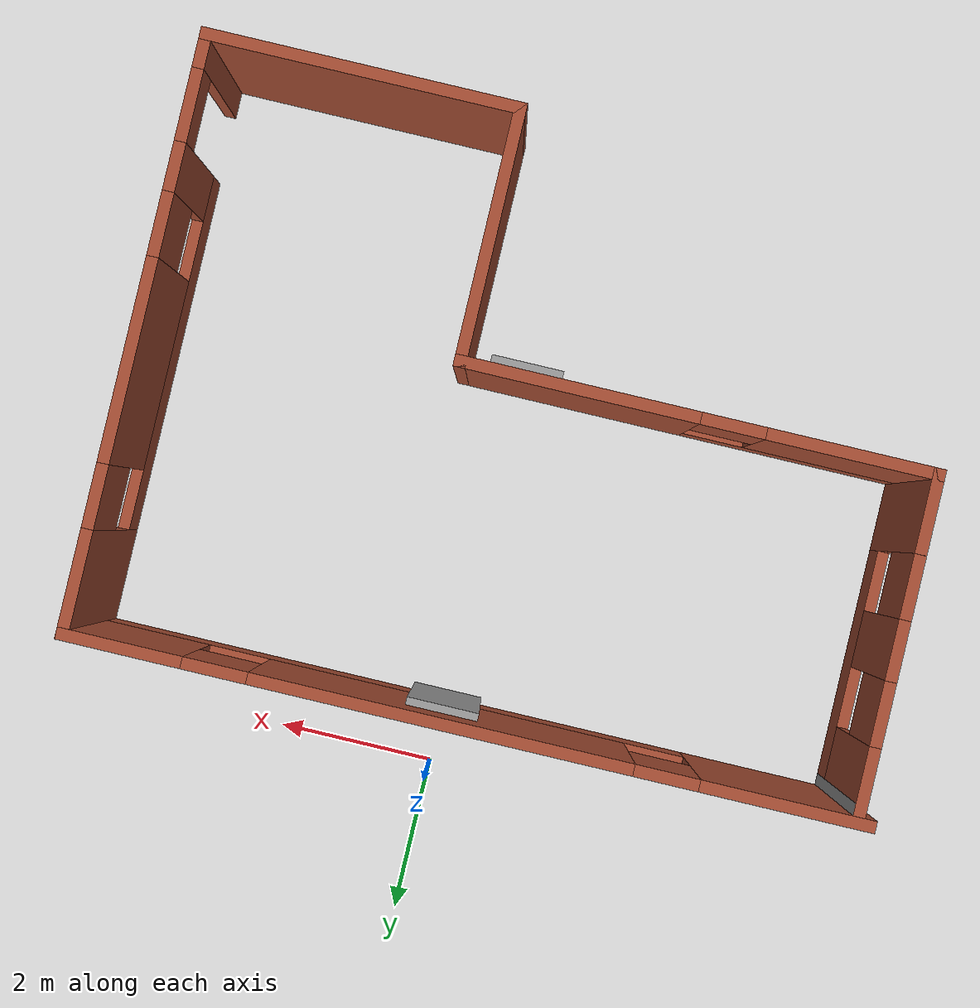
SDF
<?xml version='1.0'?>
<sdf version='1.6'>
  <model name='Building'>
    <pose frame=''>-0.355 -4.1025 0 0 -0 0</pose>
    <link name='Door_0'>
      <collision name='Door_0_Collision'>
        <geometry>
          <box>
            <size>0.9 0.17 2</size>
          </box>
        </geometry>
        <pose frame=''>0 0 1 0 -0 0</pose>
      </collision>
      <visual name='Door_0_Visual'>
        <pose frame=''>0 0 1 0 -0 0</pose>
        <geometry>
          <box>
            <size>0.9 0.17 2</size>
          </box>
        </geometry>
        <material>
          <script>
            <uri>file://media/materials/scripts/gazebo.material</uri>
            <name>Gazebo/Grey</name>
          </script>
        </material>
      </visual>
      <pose frame=''>0.287344 -1.05506 0 0 -0 0</pose>
    </link>
    <link name='Door_1'>
      <collision name='Door_1_Collision'>
        <geometry>
          <box>
            <size>0.9 0.17 2</size>
          </box>
        </geometry>
        <pose frame=''>0 0 1 0 -0 0</pose>
      </collision>
      <visual name='Door_1_Visual'>
        <pose frame=''>0 0 1 0 -0 0</pose>
        <geometry>
          <box>
            <size>0.9 0.17 2</size>
          </box>
        </geometry>
        <material>
          <script>
            <uri>file://media/materials/scripts/gazebo.material</uri>
            <name>Gazebo/Grey</name>
          </script>
        </material>
      </visual>
      <pose frame=''>0.33297 3.23381 0 0 -0 0</pose>
    </link>
    <link name='Wall_0'>
      <pose frame=''>-0 3.3225 0 0 -0 0</pose>
      <visual name='Wall_0_Visual_0'>
        <pose frame=''>-3.92512 0 1.25 0 -0 0</pose>
        <geometry>
          <box>
            <size>2.14977 0.15 2.5</size>
          </box>
        </geometry>
        <material>
          <script>
            <uri>file://media/materials/scripts/gazebo.material</uri>
            <name>Gazebo/Bricks</name>
          </script>
          <ambient>1 1 1 1</ambient>
        </material>
        <meta>
          <layer>0</layer>
        </meta>
      </visual>
      <collision name='Wall_0_Collision_0'>
        <geometry>
          <box>
            <size>2.14977 0.15 2.5</size>
          </box>
        </geometry>
        <pose frame=''>-3.92512 0 1.25 0 -0 0</pose>
      </collision>
      <visual name='Wall_0_Visual_1'>
        <pose frame=''>1.07488 0 0.25 0 -0 0</pose>
        <geometry>
          <box>
            <size>7.85023 0.15 0.5</size>
          </box>
        </geometry>
        <material>
          <script>
            <uri>file://media/materials/scripts/gazebo.material</uri>
            <name>Gazebo/Bricks</name>
          </script>
          <ambient>1 1 1 1</ambient>
        </material>
        <meta>
          <layer>0</layer>
        </meta>
      </visual>
      <collision name='Wall_0_Collision_1'>
        <geometry>
          <box>
            <size>7.85023 0.15 0.5</size>
          </box>
        </geometry>
        <pose frame=''>1.07488 0 0.25 0 -0 0</pose>
      </collision>
      <visual name='Wall_0_Visual_2'>
        <pose frame=''>0.310157 0 1.5 0 -0 0</pose>
        <geometry>
          <box>
            <size>4.72078 0.15 2</size>
          </box>
        </geometry>
        <material>
          <script>
            <uri>file://media/materials/scripts/gazebo.material</uri>
            <name>Gazebo/Bricks</name>
          </script>
          <ambient>1 1 1 1</ambient>
        </material>
        <meta>
          <layer>0</layer>
        </meta>
      </visual>
      <collision name='Wall_0_Collision_2'>
        <geometry>
          <box>
            <size>4.72078 0.15 2</size>
          </box>
        </geometry>
        <pose frame=''>0.310157 0 1.5 0 -0 0</pose>
      </collision>
      <visual name='Wall_0_Visual_3'>
        <pose frame=''>4.23527 0 1.5 0 -0 0</pose>
        <geometry>
          <box>
            <size>1.52946 0.15 2</size>
          </box>
        </geometry>
        <material>
          <script>
            <uri>file://media/materials/scripts/gazebo.material</uri>
            <name>Gazebo/Bricks</name>
          </script>
          <ambient>1 1 1 1</ambient>
        </material>
        <meta>
          <layer>0</layer>
        </meta>
      </visual>
      <collision name='Wall_0_Collision_3'>
        <geometry>
          <box>
            <size>1.52946 0.15 2</size>
          </box>
        </geometry>
        <pose frame=''>4.23527 0 1.5 0 -0 0</pose>
      </collision>
      <visual name='Wall_0_Visual_4'>
        <pose frame=''>-2.45023 0 1.9 0 -0 0</pose>
        <geometry>
          <box>
            <size>0.8 0.15 1.2</size>
          </box>
        </geometry>
        <material>
          <script>
            <uri>file://media/materials/scripts/gazebo.material</uri>
            <name>Gazebo/Bricks</name>
          </script>
          <ambient>1 1 1 1</ambient>
        </material>
        <meta>
          <layer>0</layer>
        </meta>
      </visual>
      <collision name='Wall_0_Collision_4'>
        <geometry>
          <box>
            <size>0.8 0.15 1.2</size>
          </box>
        </geometry>
        <pose frame=''>-2.45023 0 1.9 0 -0 0</pose>
      </collision>
      <visual name='Wall_0_Visual_5'>
        <pose frame=''>3.07055 0 1.9 0 -0 0</pose>
        <geometry>
          <box>
            <size>0.8 0.15 1.2</size>
          </box>
        </geometry>
        <material>
          <script>
            <uri>file://media/materials/scripts/gazebo.material</uri>
            <name>Gazebo/Bricks</name>
          </script>
          <ambient>1 1 1 1</ambient>
        </material>
        <meta>
          <layer>0</layer>
        </meta>
      </visual>
      <collision name='Wall_0_Collision_5'>
        <geometry>
          <box>
            <size>0.8 0.15 1.2</size>
          </box>
        </geometry>
        <pose frame=''>3.07055 0 1.9 0 -0 0</pose>
      </collision>
    </link>
    <link name='Wall_10'>
      <pose frame=''>-1.85 -0.9275 0 0 -0 3.14159</pose>
      <visual name='Wall_10_Visual_0'>
        <pose frame=''>-1.49114 0 1.25 0 -0 0</pose>
        <geometry>
          <box>
            <size>3.01773 0.15 2.5</size>
          </box>
        </geometry>
        <material>
          <script>
            <uri>file://media/materials/scripts/gazebo.material</uri>
            <name>Gazebo/Bricks</name>
          </script>
          <ambient>1 1 1 1</ambient>
        </material>
        <meta>
          <layer>0</layer>
        </meta>
      </visual>
      <collision name='Wall_10_Collision_0'>
        <geometry>
          <box>
            <size>3.01773 0.15 2.5</size>
          </box>
        </geometry>
        <pose frame=''>-1.49114 0 1.25 0 -0 0</pose>
      </collision>
      <visual name='Wall_10_Visual_1'>
        <pose frame=''>1.50886 0 0.25 0 -0 0</pose>
        <geometry>
          <box>
            <size>2.98227 0.15 0.5</size>
          </box>
        </geometry>
        <material>
          <script>
            <uri>file://media/materials/scripts/gazebo.material</uri>
            <name>Gazebo/Bricks</name>
          </script>
          <ambient>1 1 1 1</ambient>
        </material>
        <meta>
          <layer>0</layer>
        </meta>
      </visual>
      <collision name='Wall_10_Collision_1'>
        <geometry>
          <box>
            <size>2.98227 0.15 0.5</size>
          </box>
        </geometry>
        <pose frame=''>1.50886 0 0.25 0 -0 0</pose>
      </collision>
      <visual name='Wall_10_Visual_2'>
        <pose frame=''>1.90886 0 1.5 0 -0 0</pose>
        <geometry>
          <box>
            <size>2.18227 0.15 2</size>
          </box>
        </geometry>
        <material>
          <script>
            <uri>file://media/materials/scripts/gazebo.material</uri>
            <name>Gazebo/Bricks</name>
          </script>
          <ambient>1 1 1 1</ambient>
        </material>
        <meta>
          <layer>0</layer>
        </meta>
      </visual>
      <collision name='Wall_10_Collision_2'>
        <geometry>
          <box>
            <size>2.18227 0.15 2</size>
          </box>
        </geometry>
        <pose frame=''>1.90886 0 1.5 0 -0 0</pose>
      </collision>
      <visual name='Wall_10_Visual_3'>
        <pose frame=''>0.417726 0 1.9 0 -0 0</pose>
        <geometry>
          <box>
            <size>0.8 0.15 1.2</size>
          </box>
        </geometry>
        <material>
          <script>
            <uri>file://media/materials/scripts/gazebo.material</uri>
            <name>Gazebo/Bricks</name>
          </script>
          <ambient>1 1 1 1</ambient>
        </material>
        <meta>
          <layer>0</layer>
        </meta>
      </visual>
      <collision name='Wall_10_Collision_3'>
        <geometry>
          <box>
            <size>0.8 0.15 1.2</size>
          </box>
        </geometry>
        <pose frame=''>0.417726 0 1.9 0 -0 0</pose>
      </collision>
    </link>
    <link name='Wall_11'>
      <pose frame=''>-4.775 1.1225 0 0 -0 1.5708</pose>
      <visual name='Wall_11_Visual_0'>
        <pose frame=''>-1.59845 0 1.25 0 -0 0</pose>
        <geometry>
          <box>
            <size>1.05311 0.15 2.5</size>
          </box>
        </geometry>
        <material>
          <script>
            <uri>file://media/materials/scripts/gazebo.material</uri>
            <name>Gazebo/Bricks</name>
          </script>
          <ambient>1 1 1 1</ambient>
        </material>
        <meta>
          <layer>0</layer>
        </meta>
      </visual>
      <collision name='Wall_11_Collision_0'>
        <geometry>
          <box>
            <size>1.05311 0.15 2.5</size>
          </box>
        </geometry>
        <pose frame=''>-1.59845 0 1.25 0 -0 0</pose>
      </collision>
      <visual name='Wall_11_Visual_1'>
        <pose frame=''>0.526553 0 0.25 0 -0 0</pose>
        <geometry>
          <box>
            <size>3.19689 0.15 0.5</size>
          </box>
        </geometry>
        <material>
          <script>
            <uri>file://media/materials/scripts/gazebo.material</uri>
            <name>Gazebo/Bricks</name>
          </script>
          <ambient>1 1 1 1</ambient>
        </material>
        <meta>
          <layer>0</layer>
        </meta>
      </visual>
      <collision name='Wall_11_Collision_1'>
        <geometry>
          <box>
            <size>3.19689 0.15 0.5</size>
          </box>
        </geometry>
        <pose frame=''>0.526553 0 0.25 0 -0 0</pose>
      </collision>
      <visual name='Wall_11_Visual_2'>
        <pose frame=''>0.103752 0 1.5 0 -0 0</pose>
        <geometry>
          <box>
            <size>0.751293 0.15 2</size>
          </box>
        </geometry>
        <material>
          <script>
            <uri>file://media/materials/scripts/gazebo.material</uri>
            <name>Gazebo/Bricks</name>
          </script>
          <ambient>1 1 1 1</ambient>
        </material>
        <meta>
          <layer>0</layer>
        </meta>
      </visual>
      <collision name='Wall_11_Collision_2'>
        <geometry>
          <box>
            <size>0.751293 0.15 2</size>
          </box>
        </geometry>
        <pose frame=''>0.103752 0 1.5 0 -0 0</pose>
      </collision>
      <visual name='Wall_11_Visual_3'>
        <pose frame=''>1.7022 0 1.5 0 -0 0</pose>
        <geometry>
          <box>
            <size>0.845601 0.15 2</size>
          </box>
        </geometry>
        <material>
          <script>
            <uri>file://media/materials/scripts/gazebo.material</uri>
            <name>Gazebo/Bricks</name>
          </script>
          <ambient>1 1 1 1</ambient>
        </material>
        <meta>
          <layer>0</layer>
        </meta>
      </visual>
      <collision name='Wall_11_Collision_3'>
        <geometry>
          <box>
            <size>0.845601 0.15 2</size>
          </box>
        </geometry>
        <pose frame=''>1.7022 0 1.5 0 -0 0</pose>
      </collision>
      <visual name='Wall_11_Visual_4'>
        <pose frame=''>-0.671894 0 1.9 0 -0 0</pose>
        <geometry>
          <box>
            <size>0.8 0.15 1.2</size>
          </box>
        </geometry>
        <material>
          <script>
            <uri>file://media/materials/scripts/gazebo.material</uri>
            <name>Gazebo/Bricks</name>
          </script>
          <ambient>1 1 1 1</ambient>
        </material>
        <meta>
          <layer>0</layer>
        </meta>
      </visual>
      <collision name='Wall_11_Collision_4'>
        <geometry>
          <box>
            <size>0.8 0.15 1.2</size>
          </box>
        </geometry>
        <pose frame=''>-0.671894 0 1.9 0 -0 0</pose>
      </collision>
      <visual name='Wall_11_Visual_5'>
        <pose frame=''>0.879399 0 1.9 0 -0 0</pose>
        <geometry>
          <box>
            <size>0.8 0.15 1.2</size>
          </box>
        </geometry>
        <material>
          <script>
            <uri>file://media/materials/scripts/gazebo.material</uri>
            <name>Gazebo/Bricks</name>
          </script>
          <ambient>1 1 1 1</ambient>
        </material>
        <meta>
          <layer>0</layer>
        </meta>
      </visual>
      <collision name='Wall_11_Collision_5'>
        <geometry>
          <box>
            <size>0.8 0.15 1.2</size>
          </box>
        </geometry>
        <pose frame=''>0.879399 0 1.9 0 -0 0</pose>
      </collision>
    </link>
    <link name='Wall_12'>
      <collision name='Wall_12_Collision'>
        <geometry>
          <box>
            <size>0.15 0.15 2.5</size>
          </box>
        </geometry>
        <pose frame=''>0 0 1.25 0 -0 0</pose>
      </collision>
      <visual name='Wall_12_Visual'>
        <pose frame=''>0 0 1.25 0 -0 0</pose>
        <geometry>
          <box>
            <size>0.15 0.15 2.5</size>
          </box>
        </geometry>
        <material>
          <script>
            <uri>file://media/materials/scripts/gazebo.material</uri>
            <name>Gazebo/Grey</name>
          </script>
          <ambient>1 1 1 1</ambient>
        </material>
        <meta>
          <layer>0</layer>
        </meta>
      </visual>
      <pose frame=''>-4.775 3.1725 0 0 -0 0</pose>
    </link>
    <link name='Wall_7'>
      <pose frame=''>4.925 -0.3525 0 0 -0 -1.5708</pose>
      <visual name='Wall_7_Visual_0'>
        <pose frame=''>-3.06969 0 1.25 0 -0 0</pose>
        <geometry>
          <box>
            <size>1.36061 0.15 2.5</size>
          </box>
        </geometry>
        <material>
          <script>
            <uri>file://media/materials/scripts/gazebo.material</uri>
            <name>Gazebo/Bricks</name>
          </script>
          <ambient>1 1 1 1</ambient>
        </material>
        <meta>
          <layer>0</layer>
        </meta>
      </visual>
      <collision name='Wall_7_Collision_0'>
        <geometry>
          <box>
            <size>1.36061 0.15 2.5</size>
          </box>
        </geometry>
        <pose frame=''>-3.06969 0 1.25 0 -0 0</pose>
      </collision>
      <visual name='Wall_7_Visual_1'>
        <pose frame=''>3.50068 0 1.25 0 -0 0</pose>
        <geometry>
          <box>
            <size>0.498632 0.15 2.5</size>
          </box>
        </geometry>
        <material>
          <script>
            <uri>file://media/materials/scripts/gazebo.material</uri>
            <name>Gazebo/Bricks</name>
          </script>
          <ambient>1 1 1 1</ambient>
        </material>
        <meta>
          <layer>0</layer>
        </meta>
      </visual>
      <collision name='Wall_7_Collision_1'>
        <geometry>
          <box>
            <size>0.498632 0.15 2.5</size>
          </box>
        </geometry>
        <pose frame=''>3.50068 0 1.25 0 -0 0</pose>
      </collision>
      <visual name='Wall_7_Visual_2'>
        <pose frame=''>-0.01901 0 0.25 0 -0 0</pose>
        <geometry>
          <box>
            <size>4.74076 0.15 0.5</size>
          </box>
        </geometry>
        <material>
          <script>
            <uri>file://media/materials/scripts/gazebo.material</uri>
            <name>Gazebo/Bricks</name>
          </script>
          <ambient>1 1 1 1</ambient>
        </material>
        <meta>
          <layer>0</layer>
        </meta>
      </visual>
      <collision name='Wall_7_Collision_2'>
        <geometry>
          <box>
            <size>4.74076 0.15 0.5</size>
          </box>
        </geometry>
        <pose frame=''>-0.01901 0 0.25 0 -0 0</pose>
      </collision>
      <visual name='Wall_7_Visual_3'>
        <pose frame=''>-0.324031 0 1.5 0 -0 0</pose>
        <geometry>
          <box>
            <size>2.53072 0.15 2</size>
          </box>
        </geometry>
        <material>
          <script>
            <uri>file://media/materials/scripts/gazebo.material</uri>
            <name>Gazebo/Bricks</name>
          </script>
          <ambient>1 1 1 1</ambient>
        </material>
        <meta>
          <layer>0</layer>
        </meta>
      </visual>
      <collision name='Wall_7_Collision_3'>
        <geometry>
          <box>
            <size>2.53072 0.15 2</size>
          </box>
        </geometry>
        <pose frame=''>-0.324031 0 1.5 0 -0 0</pose>
      </collision>
      <visual name='Wall_7_Visual_4'>
        <pose frame=''>2.04635 0 1.5 0 -0 0</pose>
        <geometry>
          <box>
            <size>0.61004 0.15 2</size>
          </box>
        </geometry>
        <material>
          <script>
            <uri>file://media/materials/scripts/gazebo.material</uri>
            <name>Gazebo/Bricks</name>
          </script>
          <ambient>1 1 1 1</ambient>
        </material>
        <meta>
          <layer>0</layer>
        </meta>
      </visual>
      <collision name='Wall_7_Collision_4'>
        <geometry>
          <box>
            <size>0.61004 0.15 2</size>
          </box>
        </geometry>
        <pose frame=''>2.04635 0 1.5 0 -0 0</pose>
      </collision>
      <visual name='Wall_7_Visual_5'>
        <pose frame=''>-1.98939 0 1.9 0 -0 0</pose>
        <geometry>
          <box>
            <size>0.8 0.15 1.2</size>
          </box>
        </geometry>
        <material>
          <script>
            <uri>file://media/materials/scripts/gazebo.material</uri>
            <name>Gazebo/Bricks</name>
          </script>
          <ambient>1 1 1 1</ambient>
        </material>
        <meta>
          <layer>0</layer>
        </meta>
      </visual>
      <collision name='Wall_7_Collision_5'>
        <geometry>
          <box>
            <size>0.8 0.15 1.2</size>
          </box>
        </geometry>
        <pose frame=''>-1.98939 0 1.9 0 -0 0</pose>
      </collision>
      <visual name='Wall_7_Visual_6'>
        <pose frame=''>1.34133 0 1.9 0 -0 0</pose>
        <geometry>
          <box>
            <size>0.8 0.15 1.2</size>
          </box>
        </geometry>
        <material>
          <script>
            <uri>file://media/materials/scripts/gazebo.material</uri>
            <name>Gazebo/Bricks</name>
          </script>
          <ambient>1 1 1 1</ambient>
        </material>
        <meta>
          <layer>0</layer>
        </meta>
      </visual>
      <collision name='Wall_7_Collision_6'>
        <geometry>
          <box>
            <size>0.8 0.15 1.2</size>
          </box>
        </geometry>
        <pose frame=''>1.34133 0 1.9 0 -0 0</pose>
      </collision>
      <visual name='Wall_7_Visual_7'>
        <pose frame=''>2.80137 0 2.25 0 -0 0</pose>
        <geometry>
          <box>
            <size>0.9 0.15 0.5</size>
          </box>
        </geometry>
        <material>
          <script>
            <uri>file://media/materials/scripts/gazebo.material</uri>
            <name>Gazebo/Bricks</name>
          </script>
          <ambient>1 1 1 1</ambient>
        </material>
        <meta>
          <layer>0</layer>
        </meta>
      </visual>
      <collision name='Wall_7_Collision_7'>
        <geometry>
          <box>
            <size>0.9 0.15 0.5</size>
          </box>
        </geometry>
        <pose frame=''>2.80137 0 2.25 0 -0 0</pose>
      </collision>
    </link>
    <link name='Wall_8'>
      <collision name='Wall_8_Collision'>
        <geometry>
          <box>
            <size>4 0.15 2.5</size>
          </box>
        </geometry>
        <pose frame=''>0 0 1.25 0 -0 0</pose>
      </collision>
      <visual name='Wall_8_Visual'>
        <pose frame=''>0 0 1.25 0 -0 0</pose>
        <geometry>
          <box>
            <size>4 0.15 2.5</size>
          </box>
        </geometry>
        <material>
          <script>
            <uri>file://media/materials/scripts/gazebo.material</uri>
            <name>Gazebo/Bricks</name>
          </script>
          <ambient>1 1 1 1</ambient>
        </material>
        <meta>
          <layer>0</layer>
        </meta>
      </visual>
      <pose frame=''>3 -4.0275 0 0 -0 3.14159</pose>
    </link>
    <link name='Wall_9'>
      <collision name='Wall_9_Collision'>
        <geometry>
          <box>
            <size>3.25 0.15 2.5</size>
          </box>
        </geometry>
        <pose frame=''>0 0 1.25 0 -0 0</pose>
      </collision>
      <visual name='Wall_9_Visual'>
        <pose frame=''>0 0 1.25 0 -0 0</pose>
        <geometry>
          <box>
            <size>3.25 0.15 2.5</size>
          </box>
        </geometry>
        <material>
          <script>
            <uri>file://media/materials/scripts/gazebo.material</uri>
            <name>Gazebo/Bricks</name>
          </script>
          <ambient>1 1 1 1</ambient>
        </material>
        <meta>
          <layer>0</layer>
        </meta>
      </visual>
      <pose frame=''>1.075 -2.4775 0 0 -0 1.5708</pose>
    </link>
    <static>1</static>
  </model>
</sdf>
